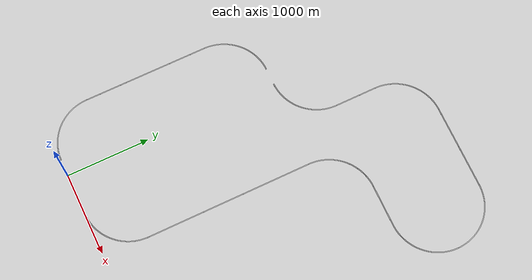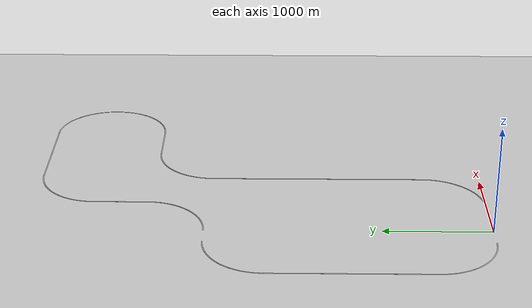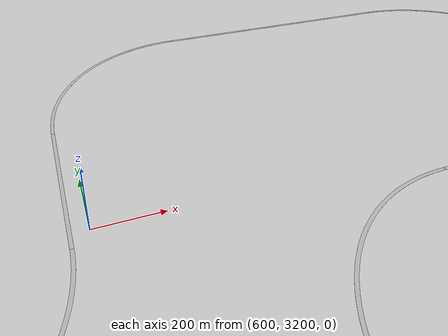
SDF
<sdf version="1.6">
 <world name="default">
  <light name="sun" type="directional">
   <pose>95.0196 103.283 10 0 -0 0</pose>
   <diffuse>0.8 0.8 0.8 1</diffuse>
   <specular>0.2 0.2 0.2 1</specular>
   <attenuation>
    <range>1000</range>
    <constant>0.9</constant>
    <linear>0.01</linear>
    <quadratic>0.001</quadratic>
   </attenuation>
   <direction>-0.5 0.1 -0.9</direction>
  </light>
  <gravity>0 0 -9.8</gravity>
  <magnetic_field>6e-06 2.3e-05 -4.2e-05</magnetic_field>
  <atmosphere type="adiabatic"/>
  <physics name="default_physics" default="0" type="ode">
   <max_step_size>0.001</max_step_size>
   <real_time_factor>1</real_time_factor>
   <real_time_update_rate>1000</real_time_update_rate>
  </physics>
  <scene><ambient>0.4 0.4 0.4 1</ambient><background>0.7 0.7 0.7 1</background><shadows>1</shadows></scene>
  <audio><device>default</device></audio>
  <spherical_coordinates>
   <surface_model>EARTH_WGS84</surface_model>
   <latitude_deg>0</latitude_deg>
   <longitude_deg>0</longitude_deg>
   <elevation>0</elevation>
   <heading_deg>0</heading_deg>
  </spherical_coordinates>
  <model name="ground_plane">
   <static>1</static>
   <link name="link">
    <collision name="collision">
     <geometry><plane><normal>0 0 1</normal><size>100 100</size></plane></geometry>
     <surface><friction><ode><mu>100</mu><mu2>50</mu2></ode></friction></surface>
    </collision>
    <visual name="visual">
     <cast_shadows>0</cast_shadows>
     <geometry><plane><normal>0 0 1</normal><size>10000 10000</size></plane></geometry>
     <material>
      <script><uri>file://media/materials/scripts/gazebo.material</uri><name>Gazebo/Grey</name></script>
     </material>
    </visual>
   </link>
  </model>
  <model name="(DS) Straight Road - 500m">
   <static>1</static>
   <link name="link">
    <inertial>
     <mass>1</mass>
     <inertia><ixx>1</ixx><iyy>1</iyy><izz>1</izz><ixy>0</ixy><ixz>0</ixz><iyz>0</iyz></inertia>
    </inertial>
    <collision name="collision">
     <geometry><mesh><uri>model://ds_straight_road_500m/meshes/straight_road_500m.dae</uri></mesh></geometry>
    </collision>
    <visual name="visual">
     <geometry><mesh><uri>model://ds_straight_road_500m/meshes/straight_road_500m.dae</uri></mesh></geometry>
    </visual>
   </link>
   <pose>250 12.2188 0 0 -0 0</pose>
  </model>
  <model name="(DS) Left Road - 1000m">
   <static>1</static>
   <link name="link">
    <inertial>
     <mass>1</mass>
     <inertia><ixx>1</ixx><iyy>1</iyy><izz>1</izz><ixy>0</ixy><ixz>0</ixz><iyz>0</iyz></inertia>
    </inertial>
    <collision name="collision">
     <geometry><mesh><uri>model://ds_left_road_1000m/meshes/curved_road_1000m.dae</uri></mesh></geometry>
    </collision>
    <visual name="visual">
     <geometry><mesh><uri>model://ds_left_road_1000m/meshes/curved_road_1000m.dae</uri></mesh></geometry>
    </visual>
   </link>
   <pose>777.662 274.385 0 0 -0 0</pose>
  </model>
  <model name="(DS) Straight Road - 2000m">
   <static>1</static>
   <link name="link">
    <inertial>
     <mass>1</mass>
     <inertia><ixx>1</ixx><iyy>1</iyy><izz>1</izz><ixy>0</ixy><ixz>0</ixz><iyz>0</iyz></inertia>
    </inertial>
    <collision name="collision">
     <geometry><mesh><uri>model://ds_straight_road_2000m/meshes/straight_road_2000m.dae</uri></mesh></geometry>
    </collision>
    <visual name="visual">
     <geometry><mesh><uri>model://ds_straight_road_2000m/meshes/straight_road_2000m.dae</uri></mesh></geometry>
    </visual>
   </link>
   <pose>1059.83 1552.05 0 0 0 -1.5708</pose>
  </model>
  <model name="(DS) Right Road - 1000m">
   <static>1</static>
   <link name="link">
    <inertial>
     <mass>1</mass>
     <inertia><ixx>1</ixx><iyy>1</iyy><izz>1</izz><ixy>0</ixy><ixz>0</ixz><iyz>0</iyz></inertia>
    </inertial>
    <collision name="collision">
     <geometry><mesh><uri>model://ds_right_road_1000m/meshes/curved_road_1000m.dae</uri></mesh></geometry>
    </collision>
    <visual name="visual">
     <geometry><mesh><uri>model://ds_right_road_1000m/meshes/curved_road_1000m.dae</uri></mesh></geometry>
    </visual>
   </link>
   <pose>1322 2829.71 0 0 -0 3.14159</pose>
  </model>
  <model name="(DS) Straight Road - 500m_0">
   <static>1</static>
   <link name="link">
    <inertial>
     <mass>1</mass>
     <inertia><ixx>1</ixx><iyy>1</iyy><izz>1</izz><ixy>0</ixy><ixz>0</ixz><iyz>0</iyz></inertia>
    </inertial>
    <collision name="collision">
     <geometry><mesh><uri>model://ds_straight_road_500m/meshes/straight_road_500m.dae</uri></mesh></geometry>
    </collision>
    <visual name="visual">
     <geometry><mesh><uri>model://ds_straight_road_500m/meshes/straight_road_500m.dae</uri></mesh></geometry>
    </visual>
   </link>
   <pose>1849.66 3111.88 0 0 -0 0</pose>
  </model>
  <model name="(DS) Left Road - 1000m_0">
   <static>1</static>
   <link name="link">
    <inertial>
     <mass>1</mass>
     <inertia><ixx>1</ixx><iyy>1</iyy><izz>1</izz><ixy>0</ixy><ixz>0</ixz><iyz>0</iyz></inertia>
    </inertial>
    <collision name="collision">
     <geometry><mesh><uri>model://ds_left_road_1000m/meshes/curved_road_1000m.dae</uri></mesh></geometry>
    </collision>
    <visual name="visual">
     <geometry><mesh><uri>model://ds_left_road_1000m/meshes/curved_road_1000m.dae</uri></mesh></geometry>
    </visual>
   </link>
   <pose>2377.33 3374.04 0 0 -0 0</pose>
  </model>
  <model name="(DS) Left Road - 1000m_1">
   <static>1</static>
   <link name="link">
    <inertial>
     <mass>1</mass>
     <inertia><ixx>1</ixx><iyy>1</iyy><izz>1</izz><ixy>0</ixy><ixz>0</ixz><iyz>0</iyz></inertia>
    </inertial>
    <collision name="collision">
     <geometry><mesh><uri>model://ds_left_road_1000m/meshes/curved_road_1000m.dae</uri></mesh></geometry>
    </collision>
    <visual name="visual">
     <geometry><mesh><uri>model://ds_left_road_1000m/meshes/curved_road_1000m.dae</uri></mesh></geometry>
    </visual>
   </link>
   <pose>2377.33 3929.37 0 0 -0 1.5708</pose>
  </model>
  <model name="(DS) Straight Road - 500m_1">
   <static>1</static>
   <link name="link">
    <inertial>
     <mass>1</mass>
     <inertia><ixx>1</ixx><iyy>1</iyy><izz>1</izz><ixy>0</ixy><ixz>0</ixz><iyz>0</iyz></inertia>
    </inertial>
    <collision name="collision">
     <geometry><mesh><uri>model://ds_straight_road_500m/meshes/straight_road_500m.dae</uri></mesh></geometry>
    </collision>
    <visual name="visual">
     <geometry><mesh><uri>model://ds_straight_road_500m/meshes/straight_road_500m.dae</uri></mesh></geometry>
    </visual>
   </link>
   <pose>1849.66 4211.54 0 0 -0 0</pose>
  </model>
  <model name="(DS) Straight Road - 500m_2">
   <static>1</static>
   <link name="link">
    <inertial>
     <mass>1</mass>
     <inertia><ixx>1</ixx><iyy>1</iyy><izz>1</izz><ixy>0</ixy><ixz>0</ixz><iyz>0</iyz></inertia>
    </inertial>
    <collision name="collision">
     <geometry><mesh><uri>model://ds_straight_road_500m/meshes/straight_road_500m.dae</uri></mesh></geometry>
    </collision>
    <visual name="visual">
     <geometry><mesh><uri>model://ds_straight_road_500m/meshes/straight_road_500m.dae</uri></mesh></geometry>
    </visual>
   </link>
   <pose>1349.66 4211.54 0 0 -0 0</pose>
  </model>
  <model name="(DS) Left Road - 1000m_2">
   <static>1</static>
   <link name="link">
    <inertial>
     <mass>1</mass>
     <inertia><ixx>1</ixx><iyy>1</iyy><izz>1</izz><ixy>0</ixy><ixz>0</ixz><iyz>0</iyz></inertia>
    </inertial>
    <collision name="collision">
     <geometry><mesh><uri>model://ds_left_road_1000m/meshes/curved_road_1000m.dae</uri></mesh></geometry>
    </collision>
    <visual name="visual">
     <geometry><mesh><uri>model://ds_left_road_1000m/meshes/curved_road_1000m.dae</uri></mesh></geometry>
    </visual>
   </link>
   <pose>821.999 3929.37 0 0 0 -3.14159</pose>
  </model>
  <model name="(DS) Straight Road - 500m_3">
   <static>1</static>
   <link name="link">
    <inertial>
     <mass>1</mass>
     <inertia><ixx>1</ixx><iyy>1</iyy><izz>1</izz><ixy>0</ixy><ixz>0</ixz><iyz>0</iyz></inertia>
    </inertial>
    <collision name="collision">
     <geometry><mesh><uri>model://ds_straight_road_500m/meshes/straight_road_500m.dae</uri></mesh></geometry>
    </collision>
    <visual name="visual">
     <geometry><mesh><uri>model://ds_straight_road_500m/meshes/straight_road_500m.dae</uri></mesh></geometry>
    </visual>
   </link>
   <pose>559.834 3401.71 0 0 0 -1.5708</pose>
  </model>
  <model name="(DS) Right Road - 1000m_0">
   <static>1</static>
   <link name="link">
    <inertial>
     <mass>1</mass>
     <inertia><ixx>1</ixx><iyy>1</iyy><izz>1</izz><ixy>0</ixy><ixz>0</ixz><iyz>0</iyz></inertia>
    </inertial>
    <collision name="collision">
     <geometry><mesh><uri>model://ds_right_road_1000m/meshes/curved_road_1000m.dae</uri></mesh></geometry>
    </collision>
    <visual name="visual">
     <geometry><mesh><uri>model://ds_right_road_1000m/meshes/curved_road_1000m.dae</uri></mesh></geometry>
    </visual>
   </link>
   <pose>277.669 2874.04 0 0 -0 0</pose>
  </model>
  <model name="(DS) Left Road - 1000m_3">
   <static>1</static>
   <link name="link">
    <inertial>
     <mass>1</mass>
     <inertia><ixx>1</ixx><iyy>1</iyy><izz>1</izz><ixy>0</ixy><ixz>0</ixz><iyz>0</iyz></inertia>
    </inertial>
    <collision name="collision">
     <geometry><mesh><uri>model://ds_left_road_1000m/meshes/curved_road_1000m.dae</uri></mesh></geometry>
    </collision>
    <visual name="visual">
     <geometry><mesh><uri>model://ds_left_road_1000m/meshes/curved_road_1000m.dae</uri></mesh></geometry>
    </visual>
   </link>
   <pose>-477.661 2329.71 0 0 -0 3.14159</pose>
  </model>
  <model name="(DS) Straight Road - 500m_4">
   <static>1</static>
   <link name="link">
    <inertial>
     <mass>1</mass>
     <inertia><ixx>1</ixx><iyy>1</iyy><izz>1</izz><ixy>0</ixy><ixz>0</ixz><iyz>0</iyz></inertia>
    </inertial>
    <collision name="collision">
     <geometry><mesh><uri>model://ds_straight_road_500m/meshes/straight_road_500m.dae</uri></mesh></geometry>
    </collision>
    <visual name="visual">
     <geometry><mesh><uri>model://ds_straight_road_500m/meshes/straight_road_500m.dae</uri></mesh></geometry>
    </visual>
   </link>
   <pose>-739.827 1802.05 0 0 0 -1.5708</pose>
  </model>
  <model name="(DS) Straight Road - 500m_5">
   <static>1</static>
   <link name="link">
    <inertial>
     <mass>1</mass>
     <inertia><ixx>1</ixx><iyy>1</iyy><izz>1</izz><ixy>0</ixy><ixz>0</ixz><iyz>0</iyz></inertia>
    </inertial>
    <collision name="collision">
     <geometry><mesh><uri>model://ds_straight_road_500m/meshes/straight_road_500m.dae</uri></mesh></geometry>
    </collision>
    <visual name="visual">
     <geometry><mesh><uri>model://ds_straight_road_500m/meshes/straight_road_500m.dae</uri></mesh></geometry>
    </visual>
   </link>
   <pose>-739.827 1302.05 0 0 0 -1.5708</pose>
  </model>
  <model name="(DS) Straight Road - 500m_6">
   <static>1</static>
   <link name="link">
    <inertial>
     <mass>1</mass>
     <inertia><ixx>1</ixx><iyy>1</iyy><izz>1</izz><ixy>0</ixy><ixz>0</ixz><iyz>0</iyz></inertia>
    </inertial>
    <collision name="collision">
     <geometry><mesh><uri>model://ds_straight_road_500m/meshes/straight_road_500m.dae</uri></mesh></geometry>
    </collision>
    <visual name="visual">
     <geometry><mesh><uri>model://ds_straight_road_500m/meshes/straight_road_500m.dae</uri></mesh></geometry>
    </visual>
   </link>
   <pose>-739.827 802.051 0 0 0 -1.5708</pose>
  </model>
  <model name="(DS) Left Road - 1000m_4">
   <static>1</static>
   <link name="link">
    <inertial>
     <mass>1</mass>
     <inertia><ixx>1</ixx><iyy>1</iyy><izz>1</izz><ixy>0</ixy><ixz>0</ixz><iyz>0</iyz></inertia>
    </inertial>
    <collision name="collision">
     <geometry><mesh><uri>model://ds_left_road_1000m/meshes/curved_road_1000m.dae</uri></mesh></geometry>
    </collision>
    <visual name="visual">
     <geometry><mesh><uri>model://ds_left_road_1000m/meshes/curved_road_1000m.dae</uri></mesh></geometry>
    </visual>
   </link>
   <pose>-477.661 274.389 0 0 0 -1.5708</pose>
  </model>
 </world>
</sdf>
